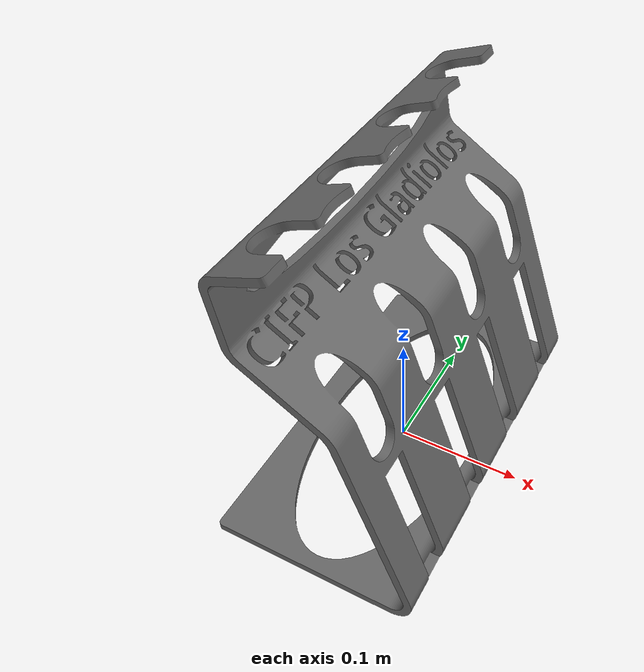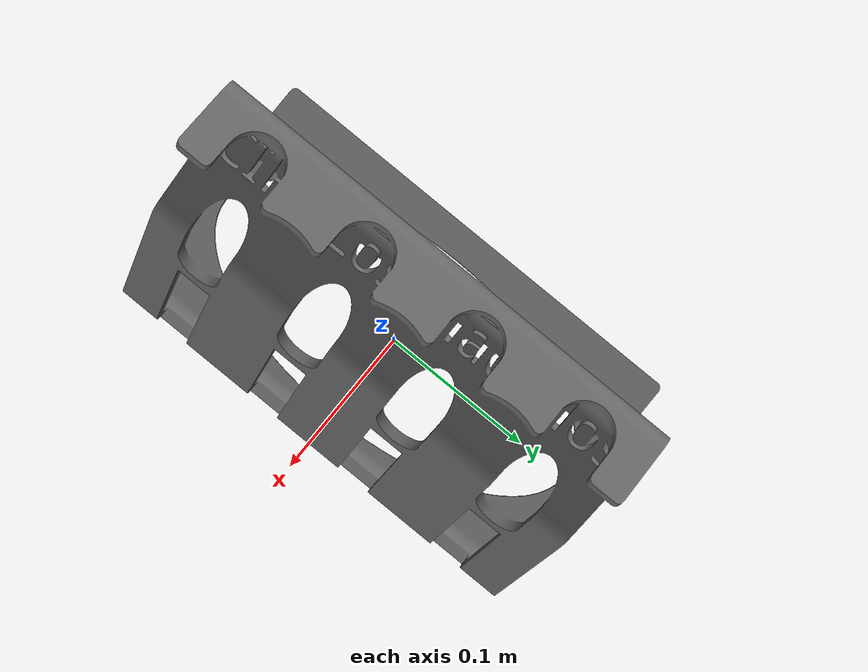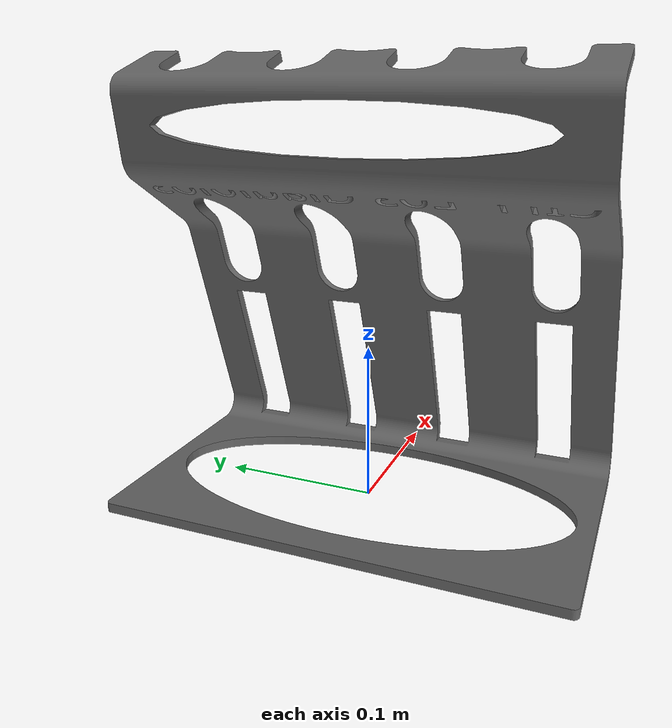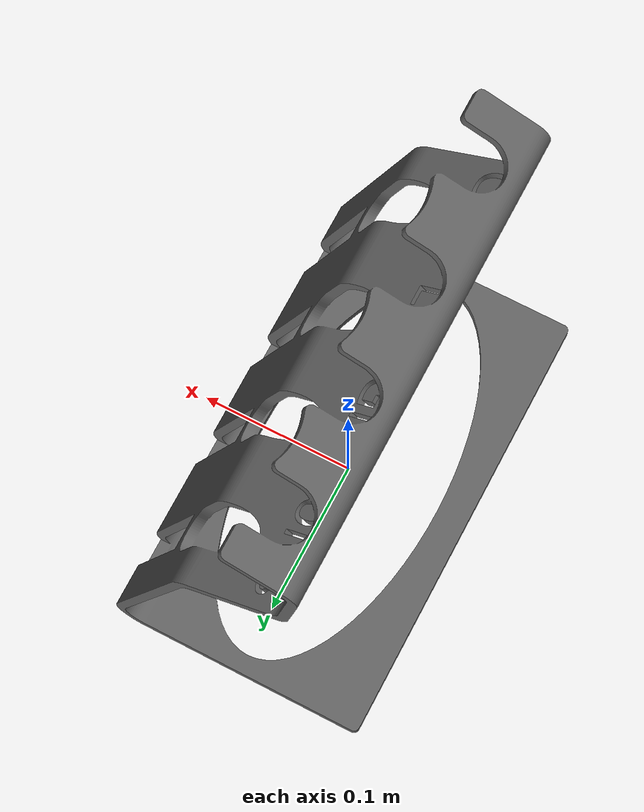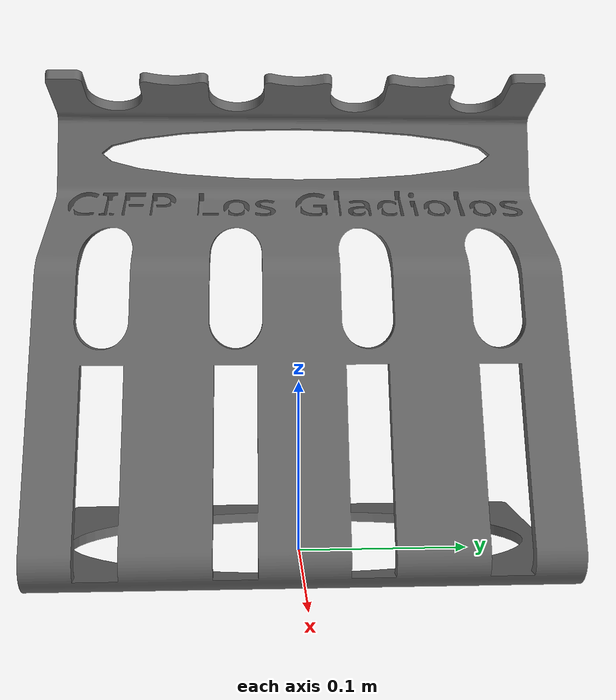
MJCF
<?xml version="1.0" ?>
<mujoco model="pipettes_stand-ver-">
  <asset>
    <material name="Scene_-_Root" specular="0.4000000000000001" shininess="0.001" rgba="0.40000000 0.40000000 0.40000000 1.0"/>
    <mesh file="pipettes_stand-ver-/pipettes_stand-ver-.obj" scale="0.0012086 0.0012086 0.0012086"/>
    <mesh file="pipettes_stand-ver-/pipettes_stand-ver-_collision_0.obj" scale="0.0012086 0.0012086 0.0012086"/>
    <mesh file="pipettes_stand-ver-/pipettes_stand-ver-_collision_1.obj" scale="0.0012086 0.0012086 0.0012086"/>
    <mesh file="pipettes_stand-ver-/pipettes_stand-ver-_collision_2.obj" scale="0.0012086 0.0012086 0.0012086"/>
    <mesh file="pipettes_stand-ver-/pipettes_stand-ver-_collision_3.obj" scale="0.0012086 0.0012086 0.0012086"/>
    <mesh file="pipettes_stand-ver-/pipettes_stand-ver-_collision_4.obj" scale="0.0012086 0.0012086 0.0012086"/>
    <mesh file="pipettes_stand-ver-/pipettes_stand-ver-_collision_5.obj" scale="0.0012086 0.0012086 0.0012086"/>
    <mesh file="pipettes_stand-ver-/pipettes_stand-ver-_collision_6.obj" scale="0.0012086 0.0012086 0.0012086"/>
    <mesh file="pipettes_stand-ver-/pipettes_stand-ver-_collision_7.obj" scale="0.0012086 0.0012086 0.0012086"/>
    <mesh file="pipettes_stand-ver-/pipettes_stand-ver-_collision_8.obj" scale="0.0012086 0.0012086 0.0012086"/>
    <mesh file="pipettes_stand-ver-/pipettes_stand-ver-_collision_9.obj" scale="0.0012086 0.0012086 0.0012086"/>
    <mesh file="pipettes_stand-ver-/pipettes_stand-ver-_collision_10.obj" scale="0.0012086 0.0012086 0.0012086"/>
    <mesh file="pipettes_stand-ver-/pipettes_stand-ver-_collision_11.obj" scale="0.0012086 0.0012086 0.0012086"/>
    <mesh file="pipettes_stand-ver-/pipettes_stand-ver-_collision_12.obj" scale="0.0012086 0.0012086 0.0012086"/>
    <mesh file="pipettes_stand-ver-/pipettes_stand-ver-_collision_13.obj" scale="0.0012086 0.0012086 0.0012086"/>
    <mesh file="pipettes_stand-ver-/pipettes_stand-ver-_collision_14.obj" scale="0.0012086 0.0012086 0.0012086"/>
    <mesh file="pipettes_stand-ver-/pipettes_stand-ver-_collision_15.obj" scale="0.0012086 0.0012086 0.0012086"/>
    <mesh file="pipettes_stand-ver-/pipettes_stand-ver-_collision_16.obj" scale="0.0012086 0.0012086 0.0012086"/>
    <mesh file="pipettes_stand-ver-/pipettes_stand-ver-_collision_17.obj" scale="0.0012086 0.0012086 0.0012086"/>
    <mesh file="pipettes_stand-ver-/pipettes_stand-ver-_collision_18.obj" scale="0.0012086 0.0012086 0.0012086"/>
    <mesh file="pipettes_stand-ver-/pipettes_stand-ver-_collision_19.obj" scale="0.0012086 0.0012086 0.0012086"/>
    <mesh file="pipettes_stand-ver-/pipettes_stand-ver-_collision_20.obj" scale="0.0012086 0.0012086 0.0012086"/>
    <mesh file="pipettes_stand-ver-/pipettes_stand-ver-_collision_21.obj" scale="0.0012086 0.0012086 0.0012086"/>
    <mesh file="pipettes_stand-ver-/pipettes_stand-ver-_collision_22.obj" scale="0.0012086 0.0012086 0.0012086"/>
    <mesh file="pipettes_stand-ver-/pipettes_stand-ver-_collision_23.obj" scale="0.0012086 0.0012086 0.0012086"/>
    <mesh file="pipettes_stand-ver-/pipettes_stand-ver-_collision_24.obj" scale="0.0012086 0.0012086 0.0012086"/>
    <mesh file="pipettes_stand-ver-/pipettes_stand-ver-_collision_25.obj" scale="0.0012086 0.0012086 0.0012086"/>
    <mesh file="pipettes_stand-ver-/pipettes_stand-ver-_collision_26.obj" scale="0.0012086 0.0012086 0.0012086"/>
    <mesh file="pipettes_stand-ver-/pipettes_stand-ver-_collision_27.obj" scale="0.0012086 0.0012086 0.0012086"/>
    <mesh file="pipettes_stand-ver-/pipettes_stand-ver-_collision_28.obj" scale="0.0012086 0.0012086 0.0012086"/>
    <mesh file="pipettes_stand-ver-/pipettes_stand-ver-_collision_29.obj" scale="0.0012086 0.0012086 0.0012086"/>
    <mesh file="pipettes_stand-ver-/pipettes_stand-ver-_collision_30.obj" scale="0.0012086 0.0012086 0.0012086"/>
    <mesh file="pipettes_stand-ver-/pipettes_stand-ver-_collision_31.obj" scale="0.0012086 0.0012086 0.0012086"/>
    <mesh file="pipettes_stand-ver-/pipettes_stand-ver-_collision_32.obj" scale="0.0012086 0.0012086 0.0012086"/>
    <mesh file="pipettes_stand-ver-/pipettes_stand-ver-_collision_33.obj" scale="0.0012086 0.0012086 0.0012086"/>
    <mesh file="pipettes_stand-ver-/pipettes_stand-ver-_collision_34.obj" scale="0.0012086 0.0012086 0.0012086"/>
    <mesh file="pipettes_stand-ver-/pipettes_stand-ver-_collision_35.obj" scale="0.0012086 0.0012086 0.0012086"/>
    <mesh file="pipettes_stand-ver-/pipettes_stand-ver-_collision_36.obj" scale="0.0012086 0.0012086 0.0012086"/>
    <mesh file="pipettes_stand-ver-/pipettes_stand-ver-_collision_37.obj" scale="0.0012086 0.0012086 0.0012086"/>
    <mesh file="pipettes_stand-ver-/pipettes_stand-ver-_collision_38.obj" scale="0.0012086 0.0012086 0.0012086"/>
    <mesh file="pipettes_stand-ver-/pipettes_stand-ver-_collision_39.obj" scale="0.0012086 0.0012086 0.0012086"/>
    <mesh file="pipettes_stand-ver-/pipettes_stand-ver-_collision_40.obj" scale="0.0012086 0.0012086 0.0012086"/>
    <mesh file="pipettes_stand-ver-/pipettes_stand-ver-_collision_41.obj" scale="0.0012086 0.0012086 0.0012086"/>
  </asset>
  <worldbody>
    <body name="pipettes_stand-ver-">
      <inertial pos="0 0 0.140000" mass="0.02" diaginertia="0.0008 0.0008 0.0005"/>
      <geom material="Scene_-_Root" mesh="pipettes_stand-ver-" class="visual"/>
      <geom mesh="pipettes_stand-ver-_collision_0" rgba="0.42854341583297706 0.3707708800581443 0.9156908521138059 1" class="collision"/>
      <geom mesh="pipettes_stand-ver-_collision_1" rgba="0.28319376862662005 0.8807286475346793 0.05917100431796074 1" class="collision"/>
      <geom mesh="pipettes_stand-ver-_collision_2" rgba="0.325832572833738 0.6334209362952151 0.7136693931451981 1" class="collision"/>
      <geom mesh="pipettes_stand-ver-_collision_3" rgba="0.8126983786952185 0.7343950459941058 0.21164557754959978 1" class="collision"/>
      <geom mesh="pipettes_stand-ver-_collision_4" rgba="0.6260967860515777 0.4956432557841878 0.43542338557257576 1" class="collision"/>
      <geom mesh="pipettes_stand-ver-_collision_5" rgba="0.3518759773151915 0.5357805299869502 0.3364720544515927 1" class="collision"/>
      <geom mesh="pipettes_stand-ver-_collision_6" rgba="0.6096160424894952 0.8857494680440561 0.32789551410685036 1" class="collision"/>
      <geom mesh="pipettes_stand-ver-_collision_7" rgba="0.4633831146878411 0.0914702343673911 0.5637659491855703 1" class="collision"/>
      <geom mesh="pipettes_stand-ver-_collision_8" rgba="0.9512067336015732 0.49451894239333916 0.32571377650856304 1" class="collision"/>
      <geom mesh="pipettes_stand-ver-_collision_9" rgba="0.7184423680609093 0.20152039359901042 0.26555918562679914 1" class="collision"/>
      <geom mesh="pipettes_stand-ver-_collision_10" rgba="0.18345251218260905 0.5322477976381977 0.678540440716186 1" class="collision"/>
      <geom mesh="pipettes_stand-ver-_collision_11" rgba="0.7916084128265872 0.14843975412371557 0.12662144238860285 1" class="collision"/>
      <geom mesh="pipettes_stand-ver-_collision_12" rgba="0.9025459801686584 0.38111995581492253 0.9185587978496791 1" class="collision"/>
      <geom mesh="pipettes_stand-ver-_collision_13" rgba="0.8076936383413397 0.7437595741905194 0.6547910641903326 1" class="collision"/>
      <geom mesh="pipettes_stand-ver-_collision_14" rgba="0.41247535530997714 0.65630949775929 0.5162322275187758 1" class="collision"/>
      <geom mesh="pipettes_stand-ver-_collision_15" rgba="0.988121378301719 0.824657609266314 0.002261099536706057 1" class="collision"/>
      <geom mesh="pipettes_stand-ver-_collision_16" rgba="0.8691218787349152 0.7833207296571172 0.4464085304493798 1" class="collision"/>
      <geom mesh="pipettes_stand-ver-_collision_17" rgba="0.6087791031578058 0.9156738403483005 0.3395127705695091 1" class="collision"/>
      <geom mesh="pipettes_stand-ver-_collision_18" rgba="0.48414463320728773 0.6025796858903243 0.5545848860634917 1" class="collision"/>
      <geom mesh="pipettes_stand-ver-_collision_19" rgba="0.9264388417657697 0.5894258692022868 0.6664974247879767 1" class="collision"/>
      <geom mesh="pipettes_stand-ver-_collision_20" rgba="0.9873194866419194 0.9216710595219738 0.7495091170537627 1" class="collision"/>
      <geom mesh="pipettes_stand-ver-_collision_21" rgba="0.09130365674407692 0.33105404647405323 0.19637033888756228 1" class="collision"/>
      <geom mesh="pipettes_stand-ver-_collision_22" rgba="0.48025331036177943 0.16061953388552408 0.11043557249560887 1" class="collision"/>
      <geom mesh="pipettes_stand-ver-_collision_23" rgba="0.18972370798731375 0.8911387123087743 0.8912833954622361 1" class="collision"/>
      <geom mesh="pipettes_stand-ver-_collision_24" rgba="0.37413213569498316 0.06023907418083907 0.79576855153613 1" class="collision"/>
      <geom mesh="pipettes_stand-ver-_collision_25" rgba="0.8036501048340793 0.27641242459493565 0.6239059412731619 1" class="collision"/>
      <geom mesh="pipettes_stand-ver-_collision_26" rgba="0.3926659936718383 0.6839426505717271 0.005233113291467362 1" class="collision"/>
      <geom mesh="pipettes_stand-ver-_collision_27" rgba="0.40170012675788924 0.29803979775052547 0.2958947098828574 1" class="collision"/>
      <geom mesh="pipettes_stand-ver-_collision_28" rgba="0.7938396072162289 0.6590056995854923 0.23074408632712695 1" class="collision"/>
      <geom mesh="pipettes_stand-ver-_collision_29" rgba="0.02378497879648589 0.15423448826635344 0.9914613726738761 1" class="collision"/>
      <geom mesh="pipettes_stand-ver-_collision_30" rgba="0.8222493019674374 0.6948648788832144 0.05950114002782525 1" class="collision"/>
      <geom mesh="pipettes_stand-ver-_collision_31" rgba="0.32745832950274156 0.8826993949159576 0.5433871012774806 1" class="collision"/>
      <geom mesh="pipettes_stand-ver-_collision_32" rgba="0.5460684213241579 0.3281977532534104 0.6124094800266919 1" class="collision"/>
      <geom mesh="pipettes_stand-ver-_collision_33" rgba="0.522770644400406 0.7895740818496338 0.9774037260279586 1" class="collision"/>
      <geom mesh="pipettes_stand-ver-_collision_34" rgba="0.0940461563267011 0.8905178878209756 0.3952606741062178 1" class="collision"/>
      <geom mesh="pipettes_stand-ver-_collision_35" rgba="0.2815735001718219 0.8248687435062271 0.17933977026292625 1" class="collision"/>
      <geom mesh="pipettes_stand-ver-_collision_36" rgba="0.9695790453124273 0.01211949666182166 0.5303182376293896 1" class="collision"/>
      <geom mesh="pipettes_stand-ver-_collision_37" rgba="0.8050740562341118 0.7180218300516061 0.5749409714031224 1" class="collision"/>
      <geom mesh="pipettes_stand-ver-_collision_38" rgba="0.8090554065251145 0.594484680143568 0.8732340941638789 1" class="collision"/>
      <geom mesh="pipettes_stand-ver-_collision_39" rgba="0.42622914597462025 0.5968450174565851 0.03705088104947629 1" class="collision"/>
      <geom mesh="pipettes_stand-ver-_collision_40" rgba="0.6733458095367374 0.7141668638708442 0.38291730066860696 1" class="collision"/>
      <geom mesh="pipettes_stand-ver-_collision_41" rgba="0.08633945535996579 0.5569901133496278 0.3473218588164374 1" class="collision"/>
      <site class="grasppoint" pos="0.0000 0.0000 0.2520"/>
      <site class="grasppoint" pos="0.0000 0.0000 0.2520"/>
      <site class="grasppoint" pos="0.0000 0.0000 0.2800"/>
        <site name="top_site" pos="0 0 0.28" size="0.01" rgba="1 0 0 0"/>
    <site name="bottom_site" pos="0 0 0.0" size="0.01" rgba="0 1 0 0"/>
      <site class="placepoint" pos="0 -0.1088 0.077"/>
      <site class="placepoint" pos="0 -0.0363 0.077"/>
      <site class="placepoint" pos="0 0.0363 0.077"/>
      <site class="placepoint" pos="0 0.1088 0.077"/>
      <site class="keypoint" pos="-0.08 -0.14 0.0"/>
      <site class="keypoint" pos="0.08 0.14 0.28"/>
</body>
  </worldbody>
  <compiler boundmass="0.015" boundinertia="1e-05" angle="radian"/>
  <default>
    <default class="visual">
      <geom group="2" type="mesh" contype="0" conaffinity="0" density="50"/>
    </default>
    <default class="collision">
      <geom group="3" type="mesh" density="50" friction="1.5 0.1 0.1" solimp="0.9 0.95 0.001" solref="0.02 1"/>
    </default>
    <default class="grasppoint">
      <site type="sphere" size="0.005" group="4" rgba="0 0 1 1"/>
    </default>
    <default class="placepoint">
      <site type="sphere" size="0.01" group="2" rgba="0 0 1 0"/>
    </default>
    <default class="keypoint">
      <site type="sphere" size="0.01" group="3" rgba="1 0 0 1"/>
    </default>
  </default>
</mujoco>
